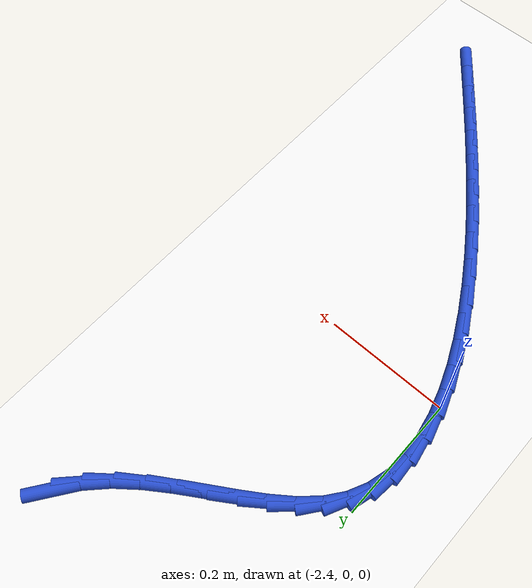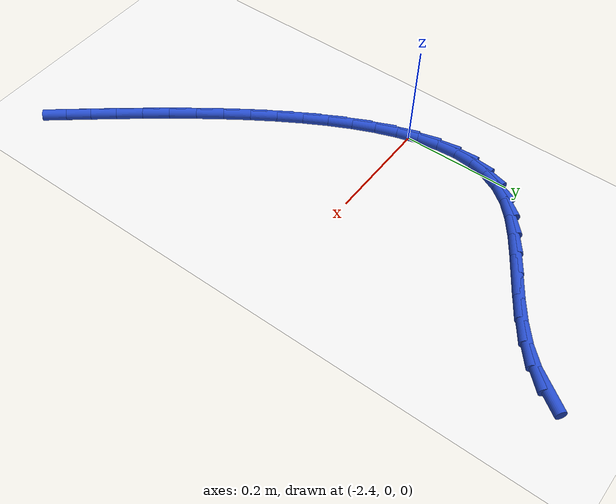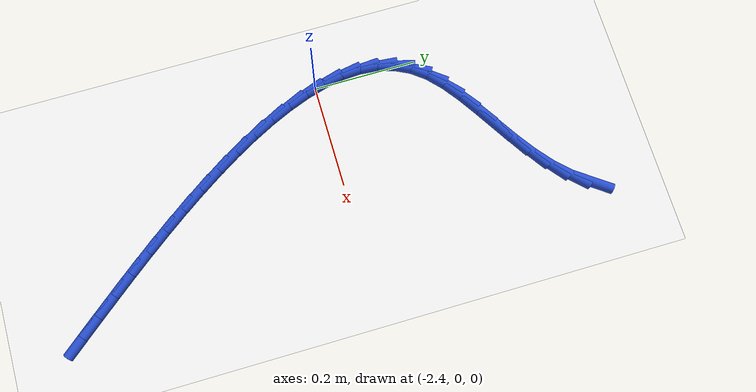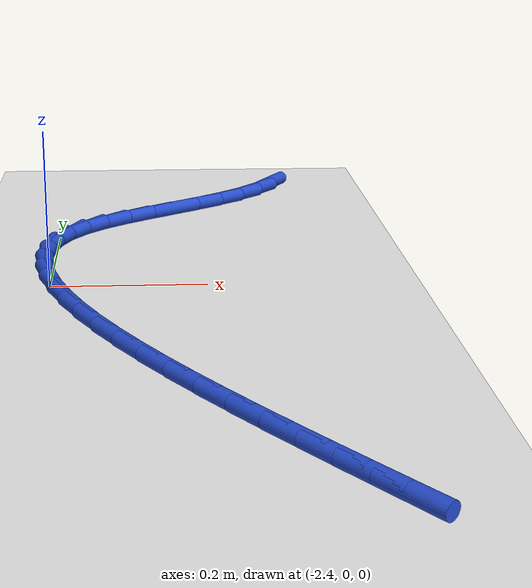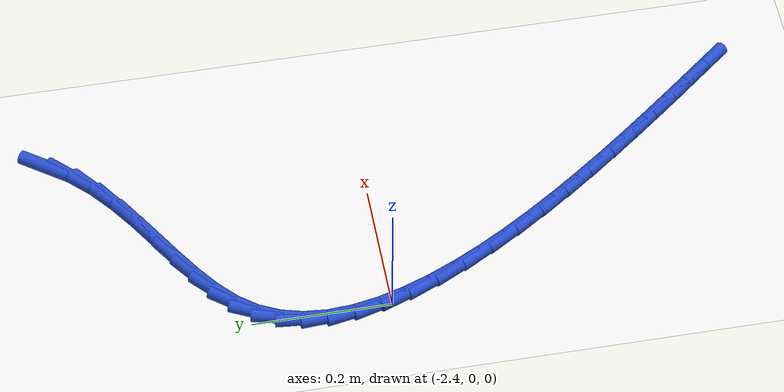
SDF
<sdf version="1.6">
 <world name="default">
  <model name="ground_plane">
   <static>1</static>
   <link name="link">
    <collision name="collision">
     <geometry><plane><normal>0 0 1</normal><size>100 100</size></plane></geometry>
     <surface><friction><ode><mu>100</mu><mu2>50</mu2></ode></friction></surface>
    </collision>
    <visual name="visual">
     <cast_shadows>0</cast_shadows>
     <geometry><plane><normal>0 0 1</normal><size>100 100</size></plane></geometry>
     <material>
      <script><uri>file://media/materials/scripts/gazebo.material</uri><name>Gazebo/WhiteGlow</name></script>
     </material>
    </visual>
   </link>
  </model>
  <model name="line">
   <link name="link_75">
    <pose>-2.074863952345641 0.4508171171227822 0.01 0 1.57 0.950108576690911</pose>
    <collision name="collision">
     <geometry><cylinder><radius>0.01</radius><length>0.08</length></cylinder></geometry>
    </collision>
    <visual name="visual">
     <material>
      <script><name>Gazebo/Blue</name><uri>file://media/materials/scripts/gazebo.material</uri></script>
     </material>
     <geometry><cylinder><radius>0.01</radius><length>0.08</length></cylinder></geometry>
    </visual>
   </link>
   <link name="link_76">
    <pose>-2.0987784361531188 0.41736784411725986 0.01 0 1.57 0.7970377884233915</pose>
    <collision name="collision">
     <geometry><cylinder><radius>0.01</radius><length>0.08</length></cylinder></geometry>
    </collision>
    <visual name="visual">
     <material>
      <script><name>Gazebo/Blue</name><uri>file://media/materials/scripts/gazebo.material</uri></script>
     </material>
     <geometry><cylinder><radius>0.01</radius><length>0.08</length></cylinder></geometry>
    </visual>
   </link>
   <link name="link_77">
    <pose>-2.1279783183346987 0.38748017392131784 0.01 0 1.57 0.6821661035276099</pose>
    <collision name="collision">
     <geometry><cylinder><radius>0.01</radius><length>0.08</length></cylinder></geometry>
    </collision>
    <visual name="visual">
     <material>
      <script><name>Gazebo/Blue</name><uri>file://media/materials/scripts/gazebo.material</uri></script>
     </material>
     <geometry><cylinder><radius>0.01</radius><length>0.08</length></cylinder></geometry>
    </visual>
   </link>
   <link name="link_78">
    <pose>-2.161190864907318 0.36050327440608576 0.01 0 1.57 0.606274256350804</pose>
    <collision name="collision">
     <geometry><cylinder><radius>0.01</radius><length>0.08</length></cylinder></geometry>
    </collision>
    <visual name="visual">
     <material>
      <script><name>Gazebo/Blue</name><uri>file://media/materials/scripts/gazebo.material</uri></script>
     </material>
     <geometry><cylinder><radius>0.01</radius><length>0.08</length></cylinder></geometry>
    </visual>
   </link>
   <link name="link_79">
    <pose>-2.1969805783976755 0.3356871338301589 0.01 0 1.57 0.5648692213021964</pose>
    <collision name="collision">
     <geometry><cylinder><radius>0.01</radius><length>0.08</length></cylinder></geometry>
    </collision>
    <visual name="visual">
     <material>
      <script><name>Gazebo/Blue</name><uri>file://media/materials/scripts/gazebo.material</uri></script>
     </material>
     <geometry><cylinder><radius>0.01</radius><length>0.08</length></cylinder></geometry>
    </visual>
   </link>
   <link name="link_80">
    <pose>-2.233911961332468 0.3122817404521325 0.01 0 1.57 0.5555746456460561</pose>
    <collision name="collision">
     <geometry><cylinder><radius>0.01</radius><length>0.08</length></cylinder></geometry>
    </collision>
    <visual name="visual">
     <material>
      <script><name>Gazebo/Blue</name><uri>file://media/materials/scripts/gazebo.material</uri></script>
     </material>
     <geometry><cylinder><radius>0.01</radius><length>0.08</length></cylinder></geometry>
    </visual>
   </link>
   <link name="link_81">
    <pose>-2.270549516238394 0.28953708253060256 0.01 0 1.57 0.5792613284918537</pose>
    <collision name="collision">
     <geometry><cylinder><radius>0.01</radius><length>0.08</length></cylinder></geometry>
    </collision>
    <visual name="visual">
     <material>
      <script><name>Gazebo/Blue</name><uri>file://media/materials/scripts/gazebo.material</uri></script>
     </material>
     <geometry><cylinder><radius>0.01</radius><length>0.08</length></cylinder></geometry>
    </visual>
   </link>
   <link name="link_82">
    <pose>-2.3054577456421512 0.2667031483241642 0.01 0 1.57 0.6407872338526547</pose>
    <collision name="collision">
     <geometry><cylinder><radius>0.01</radius><length>0.08</length></cylinder></geometry>
    </collision>
    <visual name="visual">
     <material>
      <script><name>Gazebo/Blue</name><uri>file://media/materials/scripts/gazebo.material</uri></script>
     </material>
     <geometry><cylinder><radius>0.01</radius><length>0.08</length></cylinder></geometry>
    </visual>
   </link>
   <link name="link_83">
    <pose>-2.3372011520704383 0.2430299260914128 0.01 0 1.57 0.7495287695920162</pose>
    <collision name="collision">
     <geometry><cylinder><radius>0.01</radius><length>0.08</length></cylinder></geometry>
    </collision>
    <visual name="visual">
     <material>
      <script><name>Gazebo/Blue</name><uri>file://media/materials/scripts/gazebo.material</uri></script>
     </material>
     <geometry><cylinder><radius>0.01</radius><length>0.08</length></cylinder></geometry>
    </visual>
   </link>
   <link name="link_84">
    <pose>-2.3643442380499535 0.2177674040909443 0.01 0 1.57 0.9165470242788827</pose>
    <collision name="collision">
     <geometry><cylinder><radius>0.01</radius><length>0.08</length></cylinder></geometry>
    </collision>
    <visual name="visual">
     <material>
      <script><name>Gazebo/Blue</name><uri>file://media/materials/scripts/gazebo.material</uri></script>
     </material>
     <geometry><cylinder><radius>0.01</radius><length>0.08</length></cylinder></geometry>
    </visual>
   </link>
   <link name="link_85">
    <pose>-2.3854950760454283 0.1901888699458081 0.01 0 1.57 1.1172167058652869</pose>
    <collision name="collision">
     <geometry><cylinder><radius>0.01</radius><length>0.08</length></cylinder></geometry>
    </collision>
    <visual name="visual">
     <material>
      <script><name>Gazebo/Blue</name><uri>file://media/materials/scripts/gazebo.material</uri></script>
     </material>
     <geometry><cylinder><radius>0.01</radius><length>0.08</length></cylinder></geometry>
    </visual>
   </link>
   <link name="link_86">
    <pose>-2.4001822844450578 0.16005988039706173 0.01 0 1.57 1.310836606239151</pose>
    <collision name="collision">
     <geometry><cylinder><radius>0.01</radius><length>0.08</length></cylinder></geometry>
    </collision>
    <visual name="visual">
     <material>
      <script><name>Gazebo/Blue</name><uri>file://media/materials/scripts/gazebo.material</uri></script>
     </material>
     <geometry><cylinder><radius>0.01</radius><length>0.08</length></cylinder></geometry>
    </visual>
   </link>
   <link name="link_87">
    <pose>-2.408811873229254 0.1276151841882905 0.01 0 1.57 1.4837040635937373</pose>
    <collision name="collision">
     <geometry><cylinder><radius>0.01</radius><length>0.08</length></cylinder></geometry>
    </collision>
    <visual name="visual">
     <material>
      <script><name>Gazebo/Blue</name><uri>file://media/materials/scripts/gazebo.material</uri></script>
     </material>
     <geometry><cylinder><radius>0.01</radius><length>0.08</length></cylinder></geometry>
    </visual>
   </link>
   <link name="link_88">
    <pose>-2.411824785212504 0.0931082106687724 0.01 0 1.57 -1.5113106747101714</pose>
    <collision name="collision">
     <geometry><cylinder><radius>0.01</radius><length>0.08</length></cylinder></geometry>
    </collision>
    <visual name="visual">
     <material>
      <script><name>Gazebo/Blue</name><uri>file://media/materials/scripts/gazebo.material</uri></script>
     </material>
     <geometry><cylinder><radius>0.01</radius><length>0.08</length></cylinder></geometry>
    </visual>
   </link>
   <link name="link_89">
    <pose>-2.4096619632092935 0.05679238918778647 0.01 0 1.57 -1.39063782890287</pose>
    <collision name="collision">
     <geometry><cylinder><radius>0.01</radius><length>0.08</length></cylinder></geometry>
    </collision>
    <visual name="visual">
     <material>
      <script><name>Gazebo/Blue</name><uri>file://media/materials/scripts/gazebo.material</uri></script>
     </material>
     <geometry><cylinder><radius>0.01</radius><length>0.08</length></cylinder></geometry>
    </visual>
   </link>
   <link name="link_90">
    <pose>-2.4027643500341065 0.01892114909461071 0.01 0 1.57 -1.2925176660275774</pose>
    <collision name="collision">
     <geometry><cylinder><radius>0.01</radius><length>0.08</length></cylinder></geometry>
    </collision>
    <visual name="visual">
     <material>
      <script><name>Gazebo/Blue</name><uri>file://media/materials/scripts/gazebo.material</uri></script>
     </material>
     <geometry><cylinder><radius>0.01</radius><length>0.08</length></cylinder></geometry>
    </visual>
   </link>
   <link name="link_91">
    <pose>-2.39157288850143 -0.020252080261476554 0.01 0 1.57 -1.2128717313558188</pose>
    <collision name="collision">
     <geometry><cylinder><radius>0.01</radius><length>0.08</length></cylinder></geometry>
    </collision>
    <visual name="visual">
     <material>
      <script><name>Gazebo/Blue</name><uri>file://media/materials/scripts/gazebo.material</uri></script>
     </material>
     <geometry><cylinder><radius>0.01</radius><length>0.08</length></cylinder></geometry>
    </visual>
   </link>
   <link name="link_92">
    <pose>-2.376528521425749 -0.060473869531197766 0.01 0 1.57 -1.1479684359839162</pose>
    <collision name="collision">
     <geometry><cylinder><radius>0.01</radius><length>0.08</length></cylinder></geometry>
    </collision>
    <visual name="visual">
     <material>
      <script><name>Gazebo/Blue</name><uri>file://media/materials/scripts/gazebo.material</uri></script>
     </material>
     <geometry><cylinder><radius>0.01</radius><length>0.08</length></cylinder></geometry>
    </visual>
   </link>
   <link name="link_93">
    <pose>-2.3580721916215492 -0.10149078936527302 0.01 0 1.57 -1.0947519790368652</pose>
    <collision name="collision">
     <geometry><cylinder><radius>0.01</radius><length>0.08</length></cylinder></geometry>
    </collision>
    <visual name="visual">
     <material>
      <script><name>Gazebo/Blue</name><uri>file://media/materials/scripts/gazebo.material</uri></script>
     </material>
     <geometry><cylinder><radius>0.01</radius><length>0.08</length></cylinder></geometry>
    </visual>
   </link>
   <link name="link_94">
    <pose>-2.336644841903318 -0.1430494104144247 0.01 0 1.57 -1.0508414419755985</pose>
    <collision name="collision">
     <geometry><cylinder><radius>0.01</radius><length>0.08</length></cylinder></geometry>
    </collision>
    <visual name="visual">
     <material>
      <script><name>Gazebo/Blue</name><uri>file://media/materials/scripts/gazebo.material</uri></script>
     </material>
     <geometry><cylinder><radius>0.01</radius><length>0.08</length></cylinder></geometry>
    </visual>
   </link>
   <link name="link_95">
    <pose>-2.3126874150855388 -0.18489630332937454 0.01 0 1.57 -1.0144239967621445</pose>
    <collision name="collision">
     <geometry><cylinder><radius>0.01</radius><length>0.08</length></cylinder></geometry>
    </collision>
    <visual name="visual">
     <material>
      <script><name>Gazebo/Blue</name><uri>file://media/materials/scripts/gazebo.material</uri></script>
     </material>
     <geometry><cylinder><radius>0.01</radius><length>0.08</length></cylinder></geometry>
    </visual>
   </link>
   <link name="link_96">
    <pose>-2.286640853982698 -0.22677803876084413 0.01 0 1.57 -0.9841355612535999</pose>
    <collision name="collision">
     <geometry><cylinder><radius>0.01</radius><length>0.08</length></cylinder></geometry>
    </collision>
    <visual name="visual">
     <material>
      <script><name>Gazebo/Blue</name><uri>file://media/materials/scripts/gazebo.material</uri></script>
     </material>
     <geometry><cylinder><radius>0.01</radius><length>0.08</length></cylinder></geometry>
    </visual>
   </link>
   <link name="link_97">
    <pose>-2.2589461014092818 -0.26844118735955513 0.01 0 1.57 -0.9589598821607873</pose>
    <collision name="collision">
     <geometry><cylinder><radius>0.01</radius><length>0.08</length></cylinder></geometry>
    </collision>
    <visual name="visual">
     <material>
      <script><name>Gazebo/Blue</name><uri>file://media/materials/scripts/gazebo.material</uri></script>
     </material>
     <geometry><cylinder><radius>0.01</radius><length>0.08</length></cylinder></geometry>
    </visual>
   </link>
   <link name="link_98">
    <pose>-2.2300441001797755 -0.3096323197762302 0.01 0 1.57 -0.9381524374933521</pose>
    <collision name="collision">
     <geometry><cylinder><radius>0.01</radius><length>0.08</length></cylinder></geometry>
    </collision>
    <visual name="visual">
     <material>
      <script><name>Gazebo/Blue</name><uri>file://media/materials/scripts/gazebo.material</uri></script>
     </material>
     <geometry><cylinder><radius>0.01</radius><length>0.08</length></cylinder></geometry>
    </visual>
   </link>
   <link name="link_99">
    <pose>-2.2003757931086647 -0.350098006661589 0.01 0 1.57 -0.9211877030257429</pose>
    <collision name="collision">
     <geometry><cylinder><radius>0.01</radius><length>0.08</length></cylinder></geometry>
    </collision>
    <visual name="visual">
     <material>
      <script><name>Gazebo/Blue</name><uri>file://media/materials/scripts/gazebo.material</uri></script>
     </material>
     <geometry><cylinder><radius>0.01</radius><length>0.08</length></cylinder></geometry>
    </visual>
   </link>
   <link name="link_100">
    <pose>-2.170382123010435 -0.3895848186663543 0.01 0 1.57 -0.9077271704698503</pose>
    <collision name="collision">
     <geometry><cylinder><radius>0.01</radius><length>0.08</length></cylinder></geometry>
    </collision>
    <visual name="visual">
     <material>
      <script><name>Gazebo/Blue</name><uri>file://media/materials/scripts/gazebo.material</uri></script>
     </material>
     <geometry><cylinder><radius>0.01</radius><length>0.08</length></cylinder></geometry>
    </visual>
   </link>
   <link name="link_101">
    <pose>-2.140504032699572 -0.42783932644124767 0.01 0 1.57 -0.8976070653831654</pose>
    <collision name="collision">
     <geometry><cylinder><radius>0.01</radius><length>0.08</length></cylinder></geometry>
    </collision>
    <visual name="visual">
     <material>
      <script><name>Gazebo/Blue</name><uri>file://media/materials/scripts/gazebo.material</uri></script>
     </material>
     <geometry><cylinder><radius>0.01</radius><length>0.08</length></cylinder></geometry>
    </visual>
   </link>
   <link name="link_102">
    <pose>-2.111182464990562 -0.4646081006369909 0.01 0 1.57 -0.8906902278308524</pose>
    <collision name="collision">
     <geometry><cylinder><radius>0.01</radius><length>0.08</length></cylinder></geometry>
    </collision>
    <visual name="visual">
     <material>
      <script><name>Gazebo/Blue</name><uri>file://media/materials/scripts/gazebo.material</uri></script>
     </material>
     <geometry><cylinder><radius>0.01</radius><length>0.08</length></cylinder></geometry>
    </visual>
   </link>
   <link name="link_103">
    <pose>-2.082792959469498 -0.4997072739634089 0.01 0 1.57 -0.8863702899276745</pose>
    <collision name="collision">
     <geometry><cylinder><radius>0.01</radius><length>0.08</length></cylinder></geometry>
    </collision>
    <visual name="visual">
     <material>
      <script><name>Gazebo/Blue</name><uri>file://media/materials/scripts/gazebo.material</uri></script>
     </material>
     <geometry><cylinder><radius>0.01</radius><length>0.08</length></cylinder></geometry>
    </visual>
   </link>
   <link name="link_104">
    <pose>-2.0553563309496212 -0.5333302599805426 0.01 0 1.57 -0.884729308737887</pose>
    <collision name="collision">
     <geometry><cylinder><radius>0.01</radius><length>0.08</length></cylinder></geometry>
    </collision>
    <visual name="visual">
     <material>
      <script><name>Gazebo/Blue</name><uri>file://media/materials/scripts/gazebo.material</uri></script>
     </material>
     <geometry><cylinder><radius>0.01</radius><length>0.08</length></cylinder></geometry>
    </visual>
   </link>
  </model>
 </world>
</sdf>
